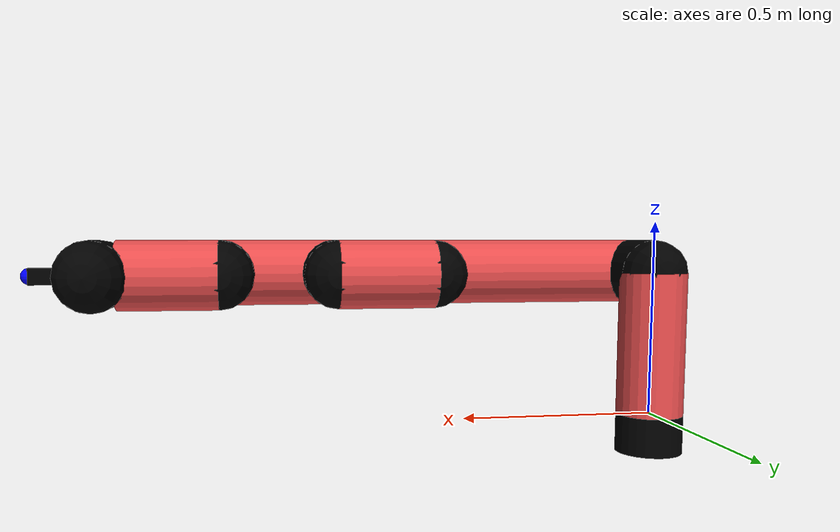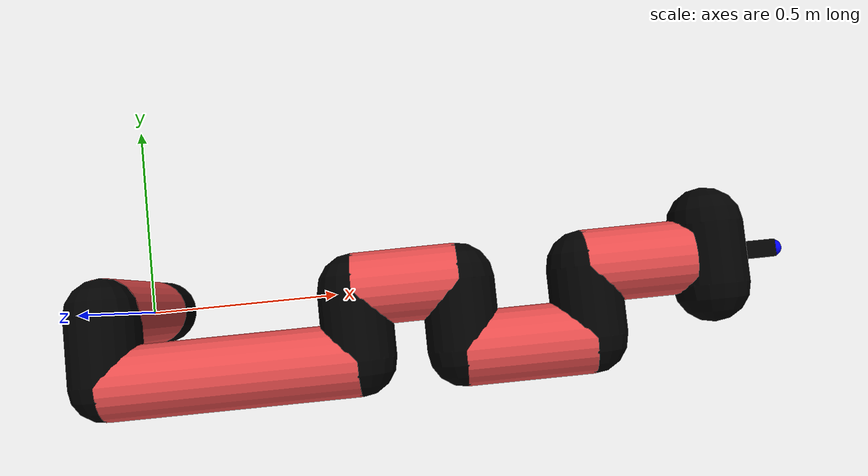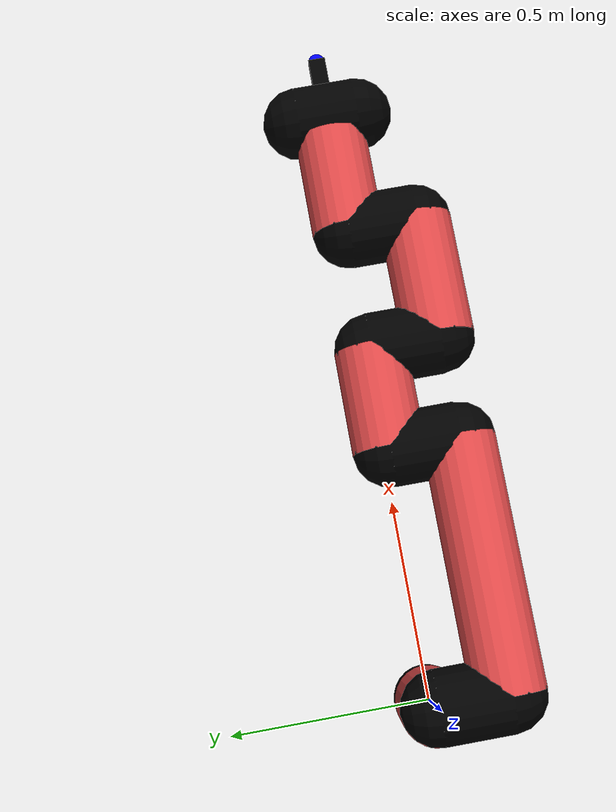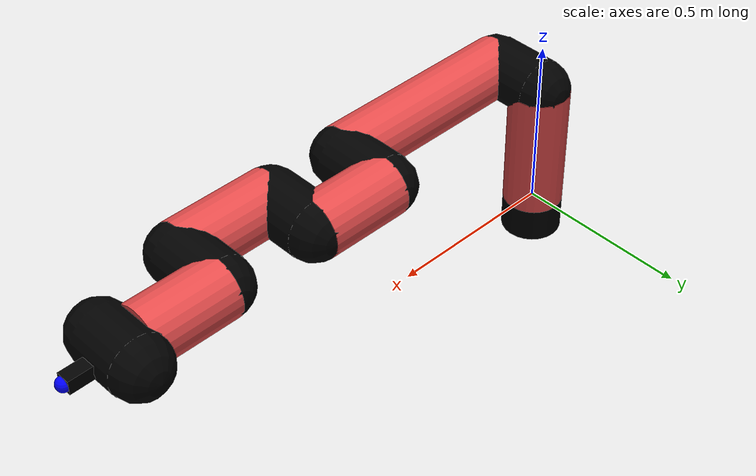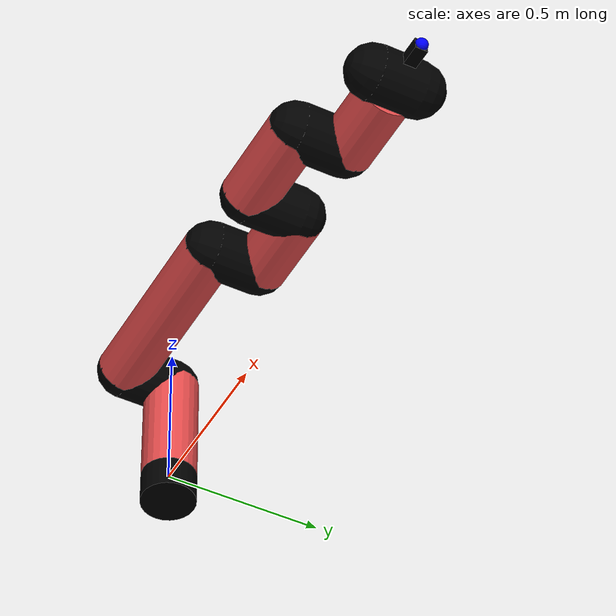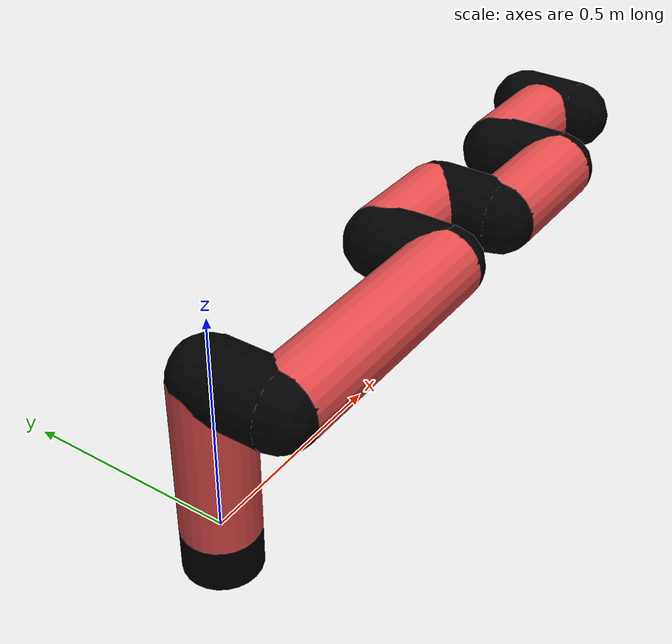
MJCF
<mujoco model="manipulator">
		<compiler angle="degree" coordinate="local" inertiafromgeom="auto" meshdir="meshes/"/>
		<option gravity="0 0 0" integrator="RK4" iterations="30" timestep="0.01"/>

		<default>
		<joint armature="1" limited="true" stiffness="10" damping="15" frictionloss="5.0"/>
		<geom conaffinity="1" condim="3" contype="1" friction=".5 .1 .1" margin="0.002"/>
		<motor ctrllimited="true"/>
		<position ctrllimited="true"/>
		</default>

		<asset>
		<texture builtin="gradient" height="100" rgb1="1.0 1.0 1.0" rgb2="1.0 1.0 1.0" type="skybox" width="100"/>
		<texture builtin="flat" height="32" name="arm_tex" rgb1="0.9 0.3 0.3" type="2d" width="32"/>
		<texture builtin="flat" height="32" name="gripper_tex" rgb1="0.0 0.0 0.0" type="cube" width="32"/>

		<material name="arm_mat" shininess="0.1" specular="0.1" texture="arm_tex"/>
		<material name="gripper_mat" shininess="1" specular="1" texture="gripper_tex"/>
		</asset>

		<worldbody>
		<light cutoff="45" diffuse=".8 .8 .8" dir="0 0.16 -1" directional="false" name="light" pos="0 -2.0 8.0" specular="0.3 0.3 0.3"/>

		<body name="base_link" pos="0 0 -0.1">
		<geom fromto="0 0 0 0 0 0.1" material="arm_mat" name="base_link" rgba="0.0 0.0 0.0 1" size="0.085" type="cylinder"/>
		</body>

		<body name="l1" pos="0 0 0">
<geom fromto="0 0 0 0 0 0.37" material="arm_mat" name="l1" rgba="0.9 0.3 0.3 1" size="0.085" type="cylinder"/>
<geom fromto="0 0 0.37 0 -0.16 0.37" material="arm_mat" name="l1_ex" rgba="0.0 0.0 0.0 1" size="0.085" type="capsule"/>
<joint axis="0 0 1" name="j1" pos="0 0 0" range="-90 90" damping="35.89" frictionloss="11.64"/>

<body name="l2" pos="0 -0.16 0.37">
<geom fromto="0 0 0 0.58 0 0" material="arm_mat" name="l2" rgba="0.9 0.3 0.3 1" size="0.085" type="cylinder"/>
<geom fromto="0.58 0 0 0.58 0.16 0" material="arm_mat" name="l2_ex" rgba="0.0 0.0 0.0 1" size="0.085" type="capsule"/>
<joint axis="0.0 1.0 0.0" name="j2" pos="0 0 0" range="-90 60" damping="34.34" frictionloss="10.21"/>

<body name="l3" pos="0.58 0.16 0">
<geom fromto="0 0 0 0.24 0 0" material="arm_mat" name="l3" rgba="0.9 0.3 0.3 1" size="0.085" type="cylinder"/>
<geom fromto="0.24 0 0 0.24 -0.16 0" material="arm_mat" name="l3_ex" rgba="0.0 0.0 0.0 1" size="0.085" type="capsule"/>
<joint axis="0.0 1.0 0.0" name="j3" pos="0 0 0" range="-30 60" damping="37.47" frictionloss="12.49"/>

<body name="l4" pos="0.24 -0.16 0">
<geom fromto="0 0 0 0.29 0 0" material="arm_mat" name="l4" rgba="0.9 0.3 0.3 1" size="0.085" type="cylinder"/>
<geom fromto="0.29 0 0 0.29 0.16 0" material="arm_mat" name="l4_ex" rgba="0.0 0.0 0.0 1" size="0.085" type="capsule"/>
<joint axis="0.0 1.0 0.0" name="j4" pos="0 0 0" range="-30 60" damping="33.44" frictionloss="12.05"/>

<body name="l5" pos="0.29 0.16 0">
<geom fromto="0 0 0 0.24 0 0" material="arm_mat" name="l5" rgba="0.9 0.3 0.3 1" size="0.085" type="cylinder"/>
<joint axis="0.0 1.0 0.0" name="j5" pos="0 0 0" range="-30 60" damping="37.14" frictionloss="10.19"/>

<body name="gripper" pos="0.24 0 0">
<geom fromto="0.05 -0.07 0 0.05 0.07 0" material="gripper_mat" name="gripper" rgba="0.0 0.0 0.0 1" size="0.085" type="capsule"/><joint axis="1 0 0" name="j6" pos="0 0 0" range="-90 90" damping="15" frictionloss="5.0"/><body name="finger" pos="0.1 0 0">
<geom fromto="0 0.0 0 0.1 0.0 0" material="gripper_mat" name="finger" rgba="0.0 0.0 0.0 1" size="0.020 0.06 0.06" type="box"/>
</body>
<site name="current" pos="0.2 0. 0.0" rgba="0. 0. 1.0 1" size="0.02" type="sphere"/>
</body>
</body>
</body>
</body>
</body>
</body>
</worldbody>
<actuator>
<motor ctrllimited="true" ctrlrange="-1.0 1.0" joint="j1" gear="70.37"/>
<motor ctrllimited="true" ctrlrange="-1.0 1.0" joint="j2" gear="72.12"/>
<motor ctrllimited="true" ctrlrange="-1.0 1.0" joint="j3" gear="94.04"/>
<motor ctrllimited="true" ctrlrange="-1.0 1.0" joint="j4" gear="81.68"/>
<motor ctrllimited="true" ctrlrange="-1.0 1.0" joint="j5" gear="90.79"/>
<motor ctrllimited="true" ctrlrange="-1.0 1.0" joint="j6" gear="80"/>
</actuator>
</mujoco>
